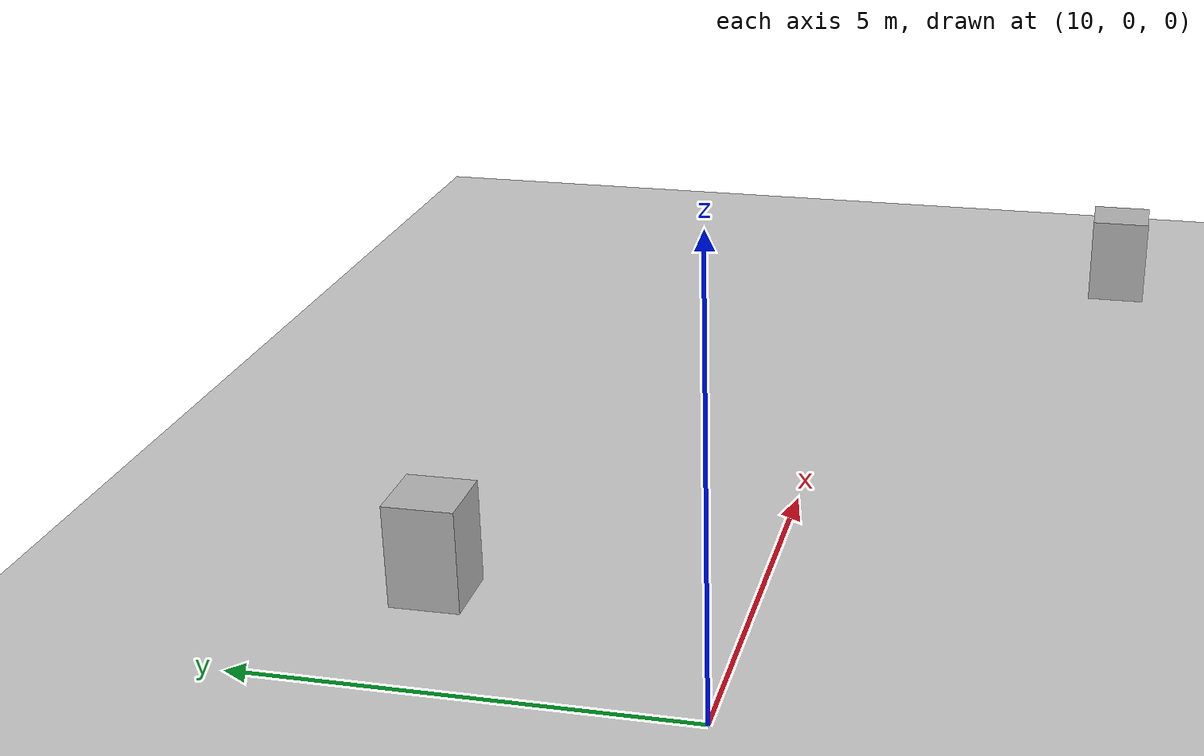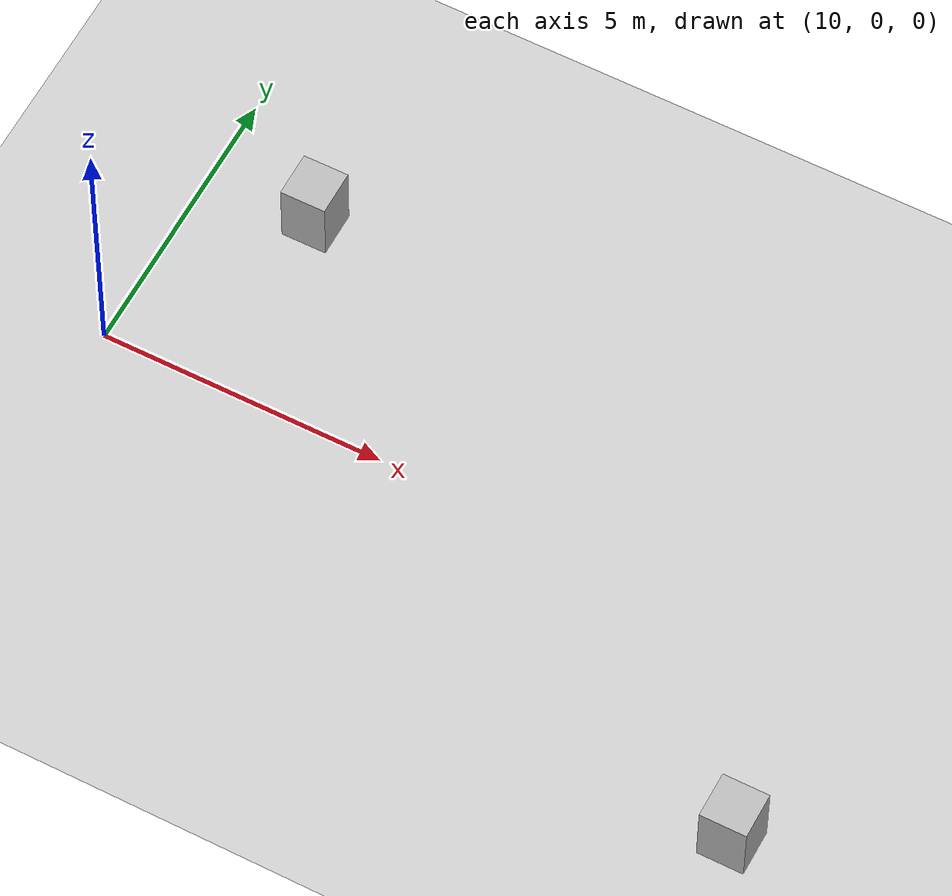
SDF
<?xml version="1.0"?>
<sdf version="1.6">
  <world name="v2-04g-r3-cruise-s5022">
    <gravity>0 0 -9.81</gravity>
    <physics name="v2_deterministic" type="ode">
      <max_step_size>0.002</max_step_size>
      <real_time_update_rate>500</real_time_update_rate>
    </physics>
    <include>
      <uri>model://sun</uri>
    </include>
    <include>
      <uri>model://ground_plane</uri>
    </include>
    <model name="cruise-left">
      <static>true</static>
      <pose>11.956506417 3.446914681 0.600000000 0 0 0.004076976</pose>
      <link name="link">
        <collision name="collision">
          <geometry>
            <box>
              <size>0.800000 0.800000 1.200000</size>
            </box>
          </geometry>
        </collision>
        <visual name="visual">
          <geometry>
            <box>
              <size>0.800000 0.800000 1.200000</size>
            </box>
          </geometry>
        </visual>
      </link>
    </model>
    <model name="cruise-right">
      <static>true</static>
      <pose>22.965188362 -3.511635625 0.600000000 0 0 0.002541193</pose>
      <link name="link">
        <collision name="collision">
          <geometry>
            <box>
              <size>0.800000 0.800000 1.200000</size>
            </box>
          </geometry>
        </collision>
        <visual name="visual">
          <geometry>
            <box>
              <size>0.800000 0.800000 1.200000</size>
            </box>
          </geometry>
        </visual>
      </link>
    </model>
  </world>
</sdf>
